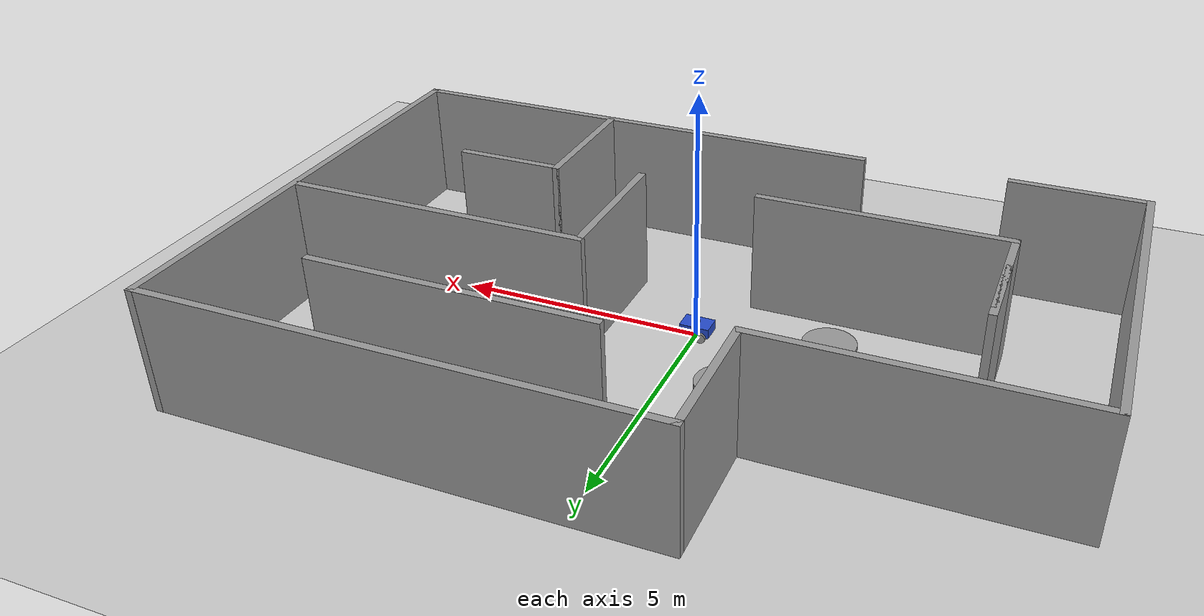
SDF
<sdf version="1.7">
 <world name="default">
  <light name="sun" type="directional">
   <pose>0 0 10 0 -0 0</pose>
   <diffuse>0.8 0.8 0.8 1</diffuse>
   <specular>0.2 0.2 0.2 1</specular>
   <attenuation>
    <range>1000</range>
    <constant>0.9</constant>
    <linear>0.01</linear>
    <quadratic>0.001</quadratic>
   </attenuation>
   <direction>-0.5 0.1 -0.9</direction>
   <spot><inner_angle>0</inner_angle><outer_angle>0</outer_angle><falloff>0</falloff></spot>
  </light>
  <model name="ground_plane">
   <static>1</static>
   <link name="link">
    <collision name="collision">
     <geometry><plane><normal>0 0 1</normal><size>100 100</size></plane></geometry>
     <surface>
      <contact><collide_bitmask>65535</collide_bitmask></contact>
      <friction><ode><mu>100</mu><mu2>50</mu2></ode></friction>
     </surface>
    </collision>
    <visual name="visual">
     <cast_shadows>0</cast_shadows>
     <geometry><plane><normal>0 0 1</normal><size>100 100</size></plane></geometry>
     <material>
      <script><uri>file://media/materials/scripts/gazebo.material</uri><name>Gazebo/Grey</name></script>
     </material>
    </visual>
   </link>
  </model>
  <gravity>0 0 -9.8</gravity>
  <magnetic_field>6e-06 2.3e-05 -4.2e-05</magnetic_field>
  <atmosphere type="adiabatic"/>
  <physics type="ode">
   <max_step_size>0.001</max_step_size>
   <real_time_factor>1</real_time_factor>
   <real_time_update_rate>1000</real_time_update_rate>
  </physics>
  <scene><ambient>0.4 0.4 0.4 1</ambient><background>0.7 0.7 0.7 1</background><shadows>1</shadows></scene>
  <audio><device>default</device></audio>
  <spherical_coordinates>
   <surface_model>EARTH_WGS84</surface_model>
   <latitude_deg>0</latitude_deg>
   <longitude_deg>0</longitude_deg>
   <elevation>0</elevation>
   <heading_deg>0</heading_deg>
  </spherical_coordinates>
  <model name="my_robot">
   <link name="base_link">
    <inertial>
     <pose>0.007034 0 0.000262 1.5708 -0 1.5708</pose>
     <mass>15.76</mass>
     <inertia>
      <ixx>4.53284</ixx>
      <ixy>1.4246e-18</ixy>
      <ixz>-6.39748e-18</ixz>
      <iyy>5.87525</iyy>
      <iyz>0.00502901</iyz>
      <izz>2.26025</izz>
     </inertia>
    </inertial>
    <collision name="base_link_collision">
     <pose>0 0 0.1 0 -0 0</pose>
     <geometry><box><size>0.6 0.4 0.2</size></box></geometry>
    </collision>
    <collision name="base_link_fixed_joint_lump__caster_wheel_link_collision_1">
     <pose>0.2 0 -0.05 0 -0 0</pose>
     <geometry><sphere><radius>0.05</radius></sphere></geometry>
     <surface><friction><ode><mu>0.1</mu><mu2>0.1</mu2></ode></friction></surface>
    </collision>
    <collision name="base_link_fixed_joint_lump__camera_link_collision_2">
     <pose>0.31 0 0 0 -0 0</pose>
     <geometry><box><size>0.02 0.02 0.02</size></box></geometry>
    </collision>
    <collision name="base_link_fixed_joint_lump__imu_link_collision_3">
     <pose>0 0 0.01 0 -0 0</pose>
     <geometry><box><size>0.1 0.1 0.1</size></box></geometry>
    </collision>
    <collision name="base_link_fixed_joint_lump__lidar_link_collision_4">
     <pose>0 0 0.225 0 -0 0</pose>
     <geometry><cylinder><length>0.05</length><radius>0.05</radius></cylinder></geometry>
    </collision>
    <visual name="base_link_visual">
     <pose>0 0 0.1 0 -0 0</pose>
     <geometry><box><size>0.6 0.4 0.2</size></box></geometry>
     <material>
      <script><name>Gazebo/Blue</name><uri>file://media/materials/scripts/gazebo.material</uri></script>
     </material>
    </visual>
    <visual name="base_link_fixed_joint_lump__caster_wheel_link_visual_1">
     <pose>0.2 0 -0.05 0 -0 0</pose>
     <geometry><sphere><radius>0.05</radius></sphere></geometry>
     <material>
      <script><name>Gazebo/Grey</name><uri>file://media/materials/scripts/gazebo.material</uri></script>
     </material>
    </visual>
    <visual name="base_link_fixed_joint_lump__camera_link_visual_2">
     <pose>0.31 0 0 0 -0 0</pose>
     <geometry><box><size>0.02 0.02 0.02</size></box></geometry>
    </visual>
    <visual name="base_link_fixed_joint_lump__imu_link_visual_3">
     <pose>0 0 0.01 0 -0 0</pose>
     <geometry><box><size>0.1 0.1 0.1</size></box></geometry>
    </visual>
    <visual name="base_link_fixed_joint_lump__lidar_link_visual_4">
     <pose>0 0 0.225 0 -0 0</pose>
     <geometry><cylinder><length>0.05</length><radius>0.05</radius></cylinder></geometry>
    </visual>
    <sensor name="depth_camera" type="depth">
     <visualize>1</visualize>
     <update_rate>30</update_rate>
     <camera name="camera">
      <horizontal_fov>1.0472</horizontal_fov>
      <image><width>640</width><height>480</height><format>R8G8B8</format></image>
      <clip><near>0.05</near><far>3</far></clip>
     </camera>
     <plugin name="depth_camera_controller" filename="libgazebo_ros_camera.so">
      <baseline>0.2</baseline>
      <alwaysOn>1</alwaysOn>
      <updateRate>0.0</updateRate>
      <frame_name>camera_depth_frame</frame_name>
     </plugin>
     <pose>0.31 0 0 -1.5708 -0 -1.5708</pose>
    </sensor>
    <sensor name="imu_sensor" type="imu">
     <plugin name="imu_plugin" filename="libgazebo_ros_imu_sensor.so">
      <ros><remapping>~/out:=imu</remapping></ros>
     </plugin>
     <always_on>1</always_on>
     <update_rate>100</update_rate>
     <visualize>1</visualize>
     <imu>
      <angular_velocity>
       <x>
        <noise type="gaussian">
         <mean>0</mean>
         <stddev>0.0002</stddev>
         <bias_mean>7.5e-06</bias_mean>
         <bias_stddev>8e-07</bias_stddev>
        </noise>
       </x>
       <y>
        <noise type="gaussian">
         <mean>0</mean>
         <stddev>0.0002</stddev>
         <bias_mean>7.5e-06</bias_mean>
         <bias_stddev>8e-07</bias_stddev>
        </noise>
       </y>
       <z>
        <noise type="gaussian">
         <mean>0</mean>
         <stddev>0.0002</stddev>
         <bias_mean>7.5e-06</bias_mean>
         <bias_stddev>8e-07</bias_stddev>
        </noise>
       </z>
      </angular_velocity>
      <linear_acceleration>
       <x>
        <noise type="gaussian">
         <mean>0</mean>
         <stddev>0.017</stddev>
         <bias_mean>0.1</bias_mean>
         <bias_stddev>0.001</bias_stddev>
        </noise>
       </x>
       <y>
        <noise type="gaussian">
         <mean>0</mean>
         <stddev>0.017</stddev>
         <bias_mean>0.1</bias_mean>
         <bias_stddev>0.001</bias_stddev>
        </noise>
       </y>
       <z>
        <noise type="gaussian">
         <mean>0</mean>
         <stddev>0.017</stddev>
         <bias_mean>0.1</bias_mean>
         <bias_stddev>0.001</bias_stddev>
        </noise>
       </z>
      </linear_acceleration>
     </imu>
     <pose>0 0 0.01 0 -0 0</pose>
    </sensor>
    <sensor name="lidar" type="ray">
     <always_on>1</always_on>
     <visualize>1</visualize>
     <update_rate>5</update_rate>
     <ray>
      <scan>
       <horizontal>
        <samples>360</samples>
        <resolution>1</resolution>
        <min_angle>0</min_angle>
        <max_angle>6.28</max_angle>
       </horizontal>
       <vertical><samples>1</samples><min_angle>0</min_angle><max_angle>0</max_angle></vertical>
      </scan>
      <range><min>0.12</min><max>3.5</max><resolution>0.015</resolution></range>
      <noise><type>gaussian</type><mean>0</mean><stddev>0.01</stddev></noise>
     </ray>
     <plugin name="lidar_controller" filename="libgazebo_ros_ray_sensor.so">
      <ros><remapping>~/out:=scan</remapping></ros>
      <output_type>sensor_msgs/LaserScan</output_type>
      <frame_name>lidar_link</frame_name>
     </plugin>
     <pose>0 0 0.225 0 -0 0</pose>
    </sensor>
   </link>
   <joint name="base_left_wheel_joint" type="revolute">
    <pose relative_to="base_link">-0.15 0.225 0 0 -0 0</pose>
    <parent>base_link</parent>
    <child>left_wheel_link</child>
    <axis>
     <xyz>0 1 0</xyz>
     <limit><lower>-1e+16</lower><upper>1e+16</upper></limit>
     <dynamics><spring_reference>0</spring_reference><spring_stiffness>0</spring_stiffness></dynamics>
    </axis>
   </joint>
   <link name="left_wheel_link">
    <pose relative_to="base_left_wheel_joint">0 0 0 0 -0 0</pose>
    <inertial>
     <pose>0 0 0 1.5708 -0 0</pose>
     <mass>0.5</mass>
     <inertia>
      <ixx>0.00135417</ixx>
      <ixy>0</ixy>
      <ixz>0</ixz>
      <iyy>0.00135417</iyy>
      <iyz>0</iyz>
      <izz>0.0025</izz>
     </inertia>
    </inertial>
    <collision name="left_wheel_link_collision">
     <pose>0 0 0 1.5708 -0 0</pose>
     <geometry><cylinder><length>0.05</length><radius>0.1</radius></cylinder></geometry>
    </collision>
    <visual name="left_wheel_link_visual">
     <pose>0 0 0 1.5708 -0 0</pose>
     <geometry><cylinder><length>0.05</length><radius>0.1</radius></cylinder></geometry>
     <material>
      <script><name>Gazebo/Grey</name><uri>file://media/materials/scripts/gazebo.material</uri></script>
     </material>
    </visual>
   </link>
   <joint name="base_right_wheel_joint" type="revolute">
    <pose relative_to="base_link">-0.15 -0.225 0 0 -0 0</pose>
    <parent>base_link</parent>
    <child>right_wheel_link</child>
    <axis>
     <xyz>0 1 0</xyz>
     <limit><lower>-1e+16</lower><upper>1e+16</upper></limit>
     <dynamics><spring_reference>0</spring_reference><spring_stiffness>0</spring_stiffness></dynamics>
    </axis>
   </joint>
   <link name="right_wheel_link">
    <pose relative_to="base_right_wheel_joint">0 0 0 0 -0 0</pose>
    <inertial>
     <pose>0 0 0 1.5708 -0 0</pose>
     <mass>0.5</mass>
     <inertia>
      <ixx>0.00135417</ixx>
      <ixy>0</ixy>
      <ixz>0</ixz>
      <iyy>0.00135417</iyy>
      <iyz>0</iyz>
      <izz>0.0025</izz>
     </inertia>
    </inertial>
    <collision name="right_wheel_link_collision">
     <pose>0 0 0 1.5708 -0 0</pose>
     <geometry><cylinder><length>0.05</length><radius>0.1</radius></cylinder></geometry>
    </collision>
    <visual name="right_wheel_link_visual">
     <pose>0 0 0 1.5708 -0 0</pose>
     <geometry><cylinder><length>0.05</length><radius>0.1</radius></cylinder></geometry>
     <material>
      <script><name>Gazebo/Grey</name><uri>file://media/materials/scripts/gazebo.material</uri></script>
     </material>
    </visual>
   </link>
   <static>0</static>
   <plugin name="diff_drive_controller" filename="libgazebo_ros_diff_drive.so">
    <update_rate>50</update_rate>
    <left_joint>base_left_wheel_joint</left_joint>
    <right_joint>base_right_wheel_joint</right_joint>
    <wheel_separation>0.45</wheel_separation>
    <wheel_diameter>0.2</wheel_diameter>
    <max_wheel_torque>20</max_wheel_torque>
    <max_wheel_acceleration>1.0</max_wheel_acceleration>
    <command_topic>cmd_vel</command_topic>
    <publish_odom>1</publish_odom>
    <publish_odom_tf>1</publish_odom_tf>
    <publish_wheel_tf>1</publish_wheel_tf>
    <odometry_topic>odom</odometry_topic>
    <odometry_frame>odom</odometry_frame>
    <robot_base_frame>base_link</robot_base_frame>
   </plugin>
   <pose>-0.019538 -0.004931 0.1 -2e-06 -0 -0.01088</pose>
  </model>
  <model name="Untitled1">
   <link name="Wall_16">
    <pose>3.36559 -3.36936 0 0 -0 1.5708</pose>
    <visual name="Wall_16_Visual">
     <pose>0 0 1.25 0 -0 0</pose>
     <geometry><box><size>2.75 0.15 2.5</size></box></geometry>
     <material>
      <script><uri>file://media/materials/scripts/gazebo.material</uri><name>Gazebo/Grey</name></script>
      <ambient>1 1 1 1</ambient>
      <shader type="pixel"/>
     </material>
     <meta><layer>0</layer></meta>
    </visual>
    <collision name="Wall_16_Collision">
     <pose>0 0 1.25 0 -0 0</pose>
     <geometry><box><size>2.75 0.15 2.5</size></box></geometry>
     <surface>
      <friction>
       <ode><mu>1</mu><mu2>1</mu2><fdir1>0 0 0</fdir1><slip1>0</slip1><slip2>0</slip2></ode>
       <torsional>
        <coefficient>1</coefficient>
        <patch_radius>0</patch_radius>
        <surface_radius>0</surface_radius>
        <use_patch_radius>1</use_patch_radius>
        <ode><slip>0</slip></ode>
       </torsional>
      </friction>
      <bounce><restitution_coefficient>0</restitution_coefficient><threshold>1e+06</threshold></bounce>
      <contact>
       <collide_without_contact>0</collide_without_contact>
       <collide_without_contact_bitmask>1</collide_without_contact_bitmask>
       <collide_bitmask>1</collide_bitmask>
       <ode>
        <soft_cfm>0</soft_cfm>
        <soft_erp>0.2</soft_erp>
        <kp>1e+13</kp>
        <kd>1</kd>
        <max_vel>0.01</max_vel>
        <min_depth>0</min_depth>
       </ode>
       <bullet>
        <split_impulse>1</split_impulse>
        <split_impulse_penetration_threshold>-0.01</split_impulse_penetration_threshold>
        <soft_cfm>0</soft_cfm>
        <soft_erp>0.2</soft_erp>
        <kp>1e+13</kp>
        <kd>1</kd>
       </bullet>
      </contact>
     </surface>
    </collision>
   </link>
   <link name="Wall_17">
    <pose>4.41559 -2.06936 0 0 -0 0</pose>
    <visual name="Wall_17_Visual">
     <pose>0 0 1.25 0 -0 0</pose>
     <geometry><box><size>2.25 0.15 2.5</size></box></geometry>
     <material>
      <script><uri>file://media/materials/scripts/gazebo.material</uri><name>Gazebo/Grey</name></script>
      <ambient>1 1 1 1</ambient>
      <shader type="pixel"/>
     </material>
     <meta><layer>0</layer></meta>
    </visual>
    <collision name="Wall_17_Collision">
     <pose>0 0 1.25 0 -0 0</pose>
     <geometry><box><size>2.25 0.15 2.5</size></box></geometry>
     <surface>
      <friction>
       <ode><mu>1</mu><mu2>1</mu2><fdir1>0 0 0</fdir1><slip1>0</slip1><slip2>0</slip2></ode>
       <torsional>
        <coefficient>1</coefficient>
        <patch_radius>0</patch_radius>
        <surface_radius>0</surface_radius>
        <use_patch_radius>1</use_patch_radius>
        <ode><slip>0</slip></ode>
       </torsional>
      </friction>
      <bounce><restitution_coefficient>0</restitution_coefficient><threshold>1e+06</threshold></bounce>
      <contact>
       <collide_without_contact>0</collide_without_contact>
       <collide_without_contact_bitmask>1</collide_without_contact_bitmask>
       <collide_bitmask>1</collide_bitmask>
       <ode>
        <soft_cfm>0</soft_cfm>
        <soft_erp>0.2</soft_erp>
        <kp>1e+13</kp>
        <kd>1</kd>
        <max_vel>0.01</max_vel>
        <min_depth>0</min_depth>
       </ode>
       <bullet>
        <split_impulse>1</split_impulse>
        <split_impulse_penetration_threshold>-0.01</split_impulse_penetration_threshold>
        <soft_cfm>0</soft_cfm>
        <soft_erp>0.2</soft_erp>
        <kp>1e+13</kp>
        <kd>1</kd>
       </bullet>
      </contact>
     </surface>
    </collision>
   </link>
   <link name="Wall_19">
    <pose>4.70035 0.479718 0 0 -0 3.14159</pose>
    <visual name="Wall_19_Visual">
     <pose>0 0 1.25 0 -0 0</pose>
     <geometry><box><size>6.25 0.15 2.5</size></box></geometry>
     <material>
      <script><uri>file://media/materials/scripts/gazebo.material</uri><name>Gazebo/Grey</name></script>
      <ambient>1 1 1 1</ambient>
      <shader type="pixel"/>
     </material>
     <meta><layer>0</layer></meta>
    </visual>
    <collision name="Wall_19_Collision">
     <pose>0 0 1.25 0 -0 0</pose>
     <geometry><box><size>6.25 0.15 2.5</size></box></geometry>
     <surface>
      <friction>
       <ode><mu>1</mu><mu2>1</mu2><fdir1>0 0 0</fdir1><slip1>0</slip1><slip2>0</slip2></ode>
       <torsional>
        <coefficient>1</coefficient>
        <patch_radius>0</patch_radius>
        <surface_radius>0</surface_radius>
        <use_patch_radius>1</use_patch_radius>
        <ode><slip>0</slip></ode>
       </torsional>
      </friction>
      <bounce><restitution_coefficient>0</restitution_coefficient><threshold>1e+06</threshold></bounce>
      <contact>
       <collide_without_contact>0</collide_without_contact>
       <collide_without_contact_bitmask>1</collide_without_contact_bitmask>
       <collide_bitmask>1</collide_bitmask>
       <ode>
        <soft_cfm>0</soft_cfm>
        <soft_erp>0.2</soft_erp>
        <kp>1e+13</kp>
        <kd>1</kd>
        <max_vel>0.01</max_vel>
        <min_depth>0</min_depth>
       </ode>
       <bullet>
        <split_impulse>1</split_impulse>
        <split_impulse_penetration_threshold>-0.01</split_impulse_penetration_threshold>
        <soft_cfm>0</soft_cfm>
        <soft_erp>0.2</soft_erp>
        <kp>1e+13</kp>
        <kd>1</kd>
       </bullet>
      </contact>
     </surface>
    </collision>
   </link>
   <link name="Wall_2">
    <pose>2.8 -4.75 0 0 -0 0</pose>
    <visual name="Wall_2_Visual">
     <pose>0 0 1.25 0 -0 0</pose>
     <geometry><box><size>10.25 0.15 2.5</size></box></geometry>
     <material>
      <script><uri>file://media/materials/scripts/gazebo.material</uri><name>Gazebo/Grey</name></script>
      <ambient>1 1 1 1</ambient>
      <shader type="pixel"/>
     </material>
     <meta><layer>0</layer></meta>
    </visual>
    <collision name="Wall_2_Collision">
     <pose>0 0 1.25 0 -0 0</pose>
     <geometry><box><size>10.25 0.15 2.5</size></box></geometry>
     <surface>
      <friction>
       <ode><mu>1</mu><mu2>1</mu2><fdir1>0 0 0</fdir1><slip1>0</slip1><slip2>0</slip2></ode>
       <torsional>
        <coefficient>1</coefficient>
        <patch_radius>0</patch_radius>
        <surface_radius>0</surface_radius>
        <use_patch_radius>1</use_patch_radius>
        <ode><slip>0</slip></ode>
       </torsional>
      </friction>
      <bounce><restitution_coefficient>0</restitution_coefficient><threshold>1e+06</threshold></bounce>
      <contact>
       <collide_without_contact>0</collide_without_contact>
       <collide_without_contact_bitmask>1</collide_without_contact_bitmask>
       <collide_bitmask>1</collide_bitmask>
       <ode>
        <soft_cfm>0</soft_cfm>
        <soft_erp>0.2</soft_erp>
        <kp>1e+13</kp>
        <kd>1</kd>
        <max_vel>0.01</max_vel>
        <min_depth>0</min_depth>
       </ode>
       <bullet>
        <split_impulse>1</split_impulse>
        <split_impulse_penetration_threshold>-0.01</split_impulse_penetration_threshold>
        <soft_cfm>0</soft_cfm>
        <soft_erp>0.2</soft_erp>
        <kp>1e+13</kp>
        <kd>1</kd>
       </bullet>
      </contact>
     </surface>
    </collision>
   </link>
   <link name="Wall_20">
    <pose>1.65035 -0.945282 0 0 0 -1.5708</pose>
    <visual name="Wall_20_Visual">
     <pose>0 0 1.25 0 -0 0</pose>
     <geometry><box><size>3 0.15 2.5</size></box></geometry>
     <material>
      <script><uri>file://media/materials/scripts/gazebo.material</uri><name>Gazebo/Grey</name></script>
      <ambient>1 1 1 1</ambient>
      <shader type="pixel"/>
     </material>
     <meta><layer>0</layer></meta>
    </visual>
    <collision name="Wall_20_Collision">
     <pose>0 0 1.25 0 -0 0</pose>
     <geometry><box><size>3 0.15 2.5</size></box></geometry>
     <surface>
      <friction>
       <ode><mu>1</mu><mu2>1</mu2><fdir1>0 0 0</fdir1><slip1>0</slip1><slip2>0</slip2></ode>
       <torsional>
        <coefficient>1</coefficient>
        <patch_radius>0</patch_radius>
        <surface_radius>0</surface_radius>
        <use_patch_radius>1</use_patch_radius>
        <ode><slip>0</slip></ode>
       </torsional>
      </friction>
      <bounce><restitution_coefficient>0</restitution_coefficient><threshold>1e+06</threshold></bounce>
      <contact>
       <collide_without_contact>0</collide_without_contact>
       <collide_without_contact_bitmask>1</collide_without_contact_bitmask>
       <collide_bitmask>1</collide_bitmask>
       <ode>
        <soft_cfm>0</soft_cfm>
        <soft_erp>0.2</soft_erp>
        <kp>1e+13</kp>
        <kd>1</kd>
        <max_vel>0.01</max_vel>
        <min_depth>0</min_depth>
       </ode>
       <bullet>
        <split_impulse>1</split_impulse>
        <split_impulse_penetration_threshold>-0.01</split_impulse_penetration_threshold>
        <soft_cfm>0</soft_cfm>
        <soft_erp>0.2</soft_erp>
        <kp>1e+13</kp>
        <kd>1</kd>
       </bullet>
      </contact>
     </surface>
    </collision>
   </link>
   <link name="Wall_22">
    <pose>-5.68552 -1.17801 0 0 0 -1.5708</pose>
    <visual name="Wall_22_Visual">
     <pose>0 0 1.25 0 -0 0</pose>
     <geometry><box><size>2.5 0.15 2.5</size></box></geometry>
     <material>
      <script><uri>file://media/materials/scripts/gazebo.material</uri><name>Gazebo/Grey</name></script>
      <ambient>1 1 1 1</ambient>
      <shader type="pixel"/>
     </material>
     <meta><layer>0</layer></meta>
    </visual>
    <collision name="Wall_22_Collision">
     <pose>0 0 1.25 0 -0 0</pose>
     <geometry><box><size>2.5 0.15 2.5</size></box></geometry>
     <surface>
      <friction>
       <ode><mu>1</mu><mu2>1</mu2><fdir1>0 0 0</fdir1><slip1>0</slip1><slip2>0</slip2></ode>
       <torsional>
        <coefficient>1</coefficient>
        <patch_radius>0</patch_radius>
        <surface_radius>0</surface_radius>
        <use_patch_radius>1</use_patch_radius>
        <ode><slip>0</slip></ode>
       </torsional>
      </friction>
      <bounce><restitution_coefficient>0</restitution_coefficient><threshold>1e+06</threshold></bounce>
      <contact>
       <collide_without_contact>0</collide_without_contact>
       <collide_without_contact_bitmask>1</collide_without_contact_bitmask>
       <collide_bitmask>1</collide_bitmask>
       <ode>
        <soft_cfm>0</soft_cfm>
        <soft_erp>0.2</soft_erp>
        <kp>1e+13</kp>
        <kd>1</kd>
        <max_vel>0.01</max_vel>
        <min_depth>0</min_depth>
       </ode>
       <bullet>
        <split_impulse>1</split_impulse>
        <split_impulse_penetration_threshold>-0.01</split_impulse_penetration_threshold>
        <soft_cfm>0</soft_cfm>
        <soft_erp>0.2</soft_erp>
        <kp>1e+13</kp>
        <kd>1</kd>
       </bullet>
      </contact>
     </surface>
    </collision>
   </link>
   <link name="Wall_23">
    <pose>-3.26052 -2.35301 0 0 -0 0</pose>
    <visual name="Wall_23_Visual">
     <pose>0 0 1.25 0 -0 0</pose>
     <geometry><box><size>5 0.15 2.5</size></box></geometry>
     <material>
      <script><uri>file://media/materials/scripts/gazebo.material</uri><name>Gazebo/Grey</name></script>
      <ambient>1 1 1 1</ambient>
      <shader type="pixel"/>
     </material>
     <meta><layer>0</layer></meta>
    </visual>
    <collision name="Wall_23_Collision">
     <pose>0 0 1.25 0 -0 0</pose>
     <geometry><box><size>5 0.15 2.5</size></box></geometry>
     <surface>
      <friction>
       <ode><mu>1</mu><mu2>1</mu2><fdir1>0 0 0</fdir1><slip1>0</slip1><slip2>0</slip2></ode>
       <torsional>
        <coefficient>1</coefficient>
        <patch_radius>0</patch_radius>
        <surface_radius>0</surface_radius>
        <use_patch_radius>1</use_patch_radius>
        <ode><slip>0</slip></ode>
       </torsional>
      </friction>
      <bounce><restitution_coefficient>0</restitution_coefficient><threshold>1e+06</threshold></bounce>
      <contact>
       <collide_without_contact>0</collide_without_contact>
       <collide_without_contact_bitmask>1</collide_without_contact_bitmask>
       <collide_bitmask>1</collide_bitmask>
       <ode>
        <soft_cfm>0</soft_cfm>
        <soft_erp>0.2</soft_erp>
        <kp>1e+13</kp>
        <kd>1</kd>
        <max_vel>0.01</max_vel>
        <min_depth>0</min_depth>
       </ode>
       <bullet>
        <split_impulse>1</split_impulse>
        <split_impulse_penetration_threshold>-0.01</split_impulse_penetration_threshold>
        <soft_cfm>0</soft_cfm>
        <soft_erp>0.2</soft_erp>
        <kp>1e+13</kp>
        <kd>1</kd>
       </bullet>
      </contact>
     </surface>
    </collision>
   </link>
   <link name="Wall_26">
    <pose>-5.68552 -0.553008 0 0 0 -1.5708</pose>
    <visual name="Wall_26_Visual">
     <pose>0 0 1.25 0 -0 0</pose>
     <geometry><box><size>1.75 0.15 2.5</size></box></geometry>
     <material>
      <script><uri>file://media/materials/scripts/gazebo.material</uri><name>Gazebo/Grey</name></script>
      <ambient>1 1 1 1</ambient>
      <shader type="pixel"/>
     </material>
     <meta><layer>0</layer></meta>
    </visual>
    <collision name="Wall_26_Collision">
     <pose>0 0 1.25 0 -0 0</pose>
     <geometry><box><size>1.75 0.15 2.5</size></box></geometry>
     <surface>
      <friction>
       <ode><mu>1</mu><mu2>1</mu2><fdir1>0 0 0</fdir1><slip1>0</slip1><slip2>0</slip2></ode>
       <torsional>
        <coefficient>1</coefficient>
        <patch_radius>0</patch_radius>
        <surface_radius>0</surface_radius>
        <use_patch_radius>1</use_patch_radius>
        <ode><slip>0</slip></ode>
       </torsional>
      </friction>
      <bounce><restitution_coefficient>0</restitution_coefficient><threshold>1e+06</threshold></bounce>
      <contact>
       <collide_without_contact>0</collide_without_contact>
       <collide_without_contact_bitmask>1</collide_without_contact_bitmask>
       <collide_bitmask>1</collide_bitmask>
       <ode>
        <soft_cfm>0</soft_cfm>
        <soft_erp>0.2</soft_erp>
        <kp>1e+13</kp>
        <kd>1</kd>
        <max_vel>0.01</max_vel>
        <min_depth>0</min_depth>
       </ode>
       <bullet>
        <split_impulse>1</split_impulse>
        <split_impulse_penetration_threshold>-0.01</split_impulse_penetration_threshold>
        <soft_cfm>0</soft_cfm>
        <soft_erp>0.2</soft_erp>
        <kp>1e+13</kp>
        <kd>1</kd>
       </bullet>
      </contact>
     </surface>
    </collision>
   </link>
   <link name="Wall_28">
    <pose>2.96577 2.85919 0 0 -0 0</pose>
    <visual name="Wall_28_Visual">
     <pose>0 0 1.25 0 -0 0</pose>
     <geometry><box><size>5.75 0.15 2.5</size></box></geometry>
     <material>
      <script><uri>file://media/materials/scripts/gazebo.material</uri><name>Gazebo/Grey</name></script>
      <ambient>1 1 1 1</ambient>
      <shader type="pixel"/>
     </material>
     <meta><layer>0</layer></meta>
    </visual>
    <collision name="Wall_28_Collision">
     <pose>0 0 1.25 0 -0 0</pose>
     <geometry><box><size>5.75 0.15 2.5</size></box></geometry>
     <surface>
      <friction>
       <ode><mu>1</mu><mu2>1</mu2><fdir1>0 0 0</fdir1><slip1>0</slip1><slip2>0</slip2></ode>
       <torsional>
        <coefficient>1</coefficient>
        <patch_radius>0</patch_radius>
        <surface_radius>0</surface_radius>
        <use_patch_radius>1</use_patch_radius>
        <ode><slip>0</slip></ode>
       </torsional>
      </friction>
      <bounce><restitution_coefficient>0</restitution_coefficient><threshold>1e+06</threshold></bounce>
      <contact>
       <collide_without_contact>0</collide_without_contact>
       <collide_without_contact_bitmask>1</collide_without_contact_bitmask>
       <collide_bitmask>1</collide_bitmask>
       <ode>
        <soft_cfm>0</soft_cfm>
        <soft_erp>0.2</soft_erp>
        <kp>1e+13</kp>
        <kd>1</kd>
        <max_vel>0.01</max_vel>
        <min_depth>0</min_depth>
       </ode>
       <bullet>
        <split_impulse>1</split_impulse>
        <split_impulse_penetration_threshold>-0.01</split_impulse_penetration_threshold>
        <soft_cfm>0</soft_cfm>
        <soft_erp>0.2</soft_erp>
        <kp>1e+13</kp>
        <kd>1</kd>
       </bullet>
      </contact>
     </surface>
    </collision>
   </link>
   <link name="Wall_3">
    <pose>7.85 0.05 0 0 -0 1.5708</pose>
    <visual name="Wall_3_Visual">
     <pose>0 0 1.25 0 -0 0</pose>
     <geometry><box><size>9.75 0.15 2.5</size></box></geometry>
     <material>
      <script><uri>file://media/materials/scripts/gazebo.material</uri><name>Gazebo/Grey</name></script>
      <ambient>1 1 1 1</ambient>
      <shader type="pixel"/>
     </material>
     <meta><layer>0</layer></meta>
    </visual>
    <collision name="Wall_3_Collision">
     <pose>0 0 1.25 0 -0 0</pose>
     <geometry><box><size>9.75 0.15 2.5</size></box></geometry>
     <surface>
      <friction>
       <ode><mu>1</mu><mu2>1</mu2><fdir1>0 0 0</fdir1><slip1>0</slip1><slip2>0</slip2></ode>
       <torsional>
        <coefficient>1</coefficient>
        <patch_radius>0</patch_radius>
        <surface_radius>0</surface_radius>
        <use_patch_radius>1</use_patch_radius>
        <ode><slip>0</slip></ode>
       </torsional>
      </friction>
      <bounce><restitution_coefficient>0</restitution_coefficient><threshold>1e+06</threshold></bounce>
      <contact>
       <collide_without_contact>0</collide_without_contact>
       <collide_without_contact_bitmask>1</collide_without_contact_bitmask>
       <collide_bitmask>1</collide_bitmask>
       <ode>
        <soft_cfm>0</soft_cfm>
        <soft_erp>0.2</soft_erp>
        <kp>1e+13</kp>
        <kd>1</kd>
        <max_vel>0.01</max_vel>
        <min_depth>0</min_depth>
       </ode>
       <bullet>
        <split_impulse>1</split_impulse>
        <split_impulse_penetration_threshold>-0.01</split_impulse_penetration_threshold>
        <soft_cfm>0</soft_cfm>
        <soft_erp>0.2</soft_erp>
        <kp>1e+13</kp>
        <kd>1</kd>
       </bullet>
      </contact>
     </surface>
    </collision>
   </link>
   <link name="Wall_4">
    <pose>2.925 4.85 0 0 -0 3.14159</pose>
    <visual name="Wall_4_Visual">
     <pose>0 0 1.25 0 -0 0</pose>
     <geometry><box><size>10 0.15 2.5</size></box></geometry>
     <material>
      <script><uri>file://media/materials/scripts/gazebo.material</uri><name>Gazebo/Grey</name></script>
      <ambient>1 1 1 1</ambient>
      <shader type="pixel"/>
     </material>
     <meta><layer>0</layer></meta>
    </visual>
    <collision name="Wall_4_Collision">
     <pose>0 0 1.25 0 -0 0</pose>
     <geometry><box><size>10 0.15 2.5</size></box></geometry>
     <surface>
      <friction>
       <ode><mu>1</mu><mu2>1</mu2><fdir1>0 0 0</fdir1><slip1>0</slip1><slip2>0</slip2></ode>
       <torsional>
        <coefficient>1</coefficient>
        <patch_radius>0</patch_radius>
        <surface_radius>0</surface_radius>
        <use_patch_radius>1</use_patch_radius>
        <ode><slip>0</slip></ode>
       </torsional>
      </friction>
      <bounce><restitution_coefficient>0</restitution_coefficient><threshold>1e+06</threshold></bounce>
      <contact>
       <collide_without_contact>0</collide_without_contact>
       <collide_without_contact_bitmask>1</collide_without_contact_bitmask>
       <collide_bitmask>1</collide_bitmask>
       <ode>
        <soft_cfm>0</soft_cfm>
        <soft_erp>0.2</soft_erp>
        <kp>1e+13</kp>
        <kd>1</kd>
        <max_vel>0.01</max_vel>
        <min_depth>0</min_depth>
       </ode>
       <bullet>
        <split_impulse>1</split_impulse>
        <split_impulse_penetration_threshold>-0.01</split_impulse_penetration_threshold>
        <soft_cfm>0</soft_cfm>
        <soft_erp>0.2</soft_erp>
        <kp>1e+13</kp>
        <kd>1</kd>
       </bullet>
      </contact>
     </surface>
    </collision>
   </link>
   <link name="Wall_5">
    <pose>-2 3.55 0 0 0 -1.5708</pose>
    <visual name="Wall_5_Visual">
     <pose>0 0 1.25 0 -0 0</pose>
     <geometry><box><size>2.75 0.15 2.5</size></box></geometry>
     <material>
      <script><uri>file://media/materials/scripts/gazebo.material</uri><name>Gazebo/Grey</name></script>
      <ambient>1 1 1 1</ambient>
      <shader type="pixel"/>
     </material>
     <meta><layer>0</layer></meta>
    </visual>
    <collision name="Wall_5_Collision">
     <pose>0 0 1.25 0 -0 0</pose>
     <geometry><box><size>2.75 0.15 2.5</size></box></geometry>
     <surface>
      <friction>
       <ode><mu>1</mu><mu2>1</mu2><fdir1>0 0 0</fdir1><slip1>0</slip1><slip2>0</slip2></ode>
       <torsional>
        <coefficient>1</coefficient>
        <patch_radius>0</patch_radius>
        <surface_radius>0</surface_radius>
        <use_patch_radius>1</use_patch_radius>
        <ode><slip>0</slip></ode>
       </torsional>
      </friction>
      <bounce><restitution_coefficient>0</restitution_coefficient><threshold>1e+06</threshold></bounce>
      <contact>
       <collide_without_contact>0</collide_without_contact>
       <collide_without_contact_bitmask>1</collide_without_contact_bitmask>
       <collide_bitmask>1</collide_bitmask>
       <ode>
        <soft_cfm>0</soft_cfm>
        <soft_erp>0.2</soft_erp>
        <kp>1e+13</kp>
        <kd>1</kd>
        <max_vel>0.01</max_vel>
        <min_depth>0</min_depth>
       </ode>
       <bullet>
        <split_impulse>1</split_impulse>
        <split_impulse_penetration_threshold>-0.01</split_impulse_penetration_threshold>
        <soft_cfm>0</soft_cfm>
        <soft_erp>0.2</soft_erp>
        <kp>1e+13</kp>
        <kd>1</kd>
       </bullet>
      </contact>
     </surface>
    </collision>
   </link>
   <link name="Wall_6">
    <pose>-4.925 2.25 0 0 -0 3.14159</pose>
    <visual name="Wall_6_Visual">
     <pose>0 0 1.25 0 -0 0</pose>
     <geometry><box><size>6 0.15 2.5</size></box></geometry>
     <material>
      <script><uri>file://media/materials/scripts/gazebo.material</uri><name>Gazebo/Grey</name></script>
      <ambient>1 1 1 1</ambient>
      <shader type="pixel"/>
     </material>
     <meta><layer>0</layer></meta>
    </visual>
    <collision name="Wall_6_Collision">
     <pose>0 0 1.25 0 -0 0</pose>
     <geometry><box><size>6 0.15 2.5</size></box></geometry>
     <surface>
      <friction>
       <ode><mu>1</mu><mu2>1</mu2><fdir1>0 0 0</fdir1><slip1>0</slip1><slip2>0</slip2></ode>
       <torsional>
        <coefficient>1</coefficient>
        <patch_radius>0</patch_radius>
        <surface_radius>0</surface_radius>
        <use_patch_radius>1</use_patch_radius>
        <ode><slip>0</slip></ode>
       </torsional>
      </friction>
      <bounce><restitution_coefficient>0</restitution_coefficient><threshold>1e+06</threshold></bounce>
      <contact>
       <collide_without_contact>0</collide_without_contact>
       <collide_without_contact_bitmask>1</collide_without_contact_bitmask>
       <collide_bitmask>1</collide_bitmask>
       <ode>
        <soft_cfm>0</soft_cfm>
        <soft_erp>0.2</soft_erp>
        <kp>1e+13</kp>
        <kd>1</kd>
        <max_vel>0.01</max_vel>
        <min_depth>0</min_depth>
       </ode>
       <bullet>
        <split_impulse>1</split_impulse>
        <split_impulse_penetration_threshold>-0.01</split_impulse_penetration_threshold>
        <soft_cfm>0</soft_cfm>
        <soft_erp>0.2</soft_erp>
        <kp>1e+13</kp>
        <kd>1</kd>
       </bullet>
      </contact>
     </surface>
    </collision>
   </link>
   <link name="Wall_7">
    <pose>-7.85 -1.3 0 0 0 -1.5708</pose>
    <visual name="Wall_7_Visual">
     <pose>0 0 1.25 0 -0 0</pose>
     <geometry><box><size>7.25 0.15 2.5</size></box></geometry>
     <material>
      <script><uri>file://media/materials/scripts/gazebo.material</uri><name>Gazebo/Grey</name></script>
      <ambient>1 1 1 1</ambient>
      <shader type="pixel"/>
     </material>
     <meta><layer>0</layer></meta>
    </visual>
    <collision name="Wall_7_Collision">
     <pose>0 0 1.25 0 -0 0</pose>
     <geometry><box><size>7.25 0.15 2.5</size></box></geometry>
     <surface>
      <friction>
       <ode><mu>1</mu><mu2>1</mu2><fdir1>0 0 0</fdir1><slip1>0</slip1><slip2>0</slip2></ode>
       <torsional>
        <coefficient>1</coefficient>
        <patch_radius>0</patch_radius>
        <surface_radius>0</surface_radius>
        <use_patch_radius>1</use_patch_radius>
        <ode><slip>0</slip></ode>
       </torsional>
      </friction>
      <bounce><restitution_coefficient>0</restitution_coefficient><threshold>1e+06</threshold></bounce>
      <contact>
       <collide_without_contact>0</collide_without_contact>
       <collide_without_contact_bitmask>1</collide_without_contact_bitmask>
       <collide_bitmask>1</collide_bitmask>
       <ode>
        <soft_cfm>0</soft_cfm>
        <soft_erp>0.2</soft_erp>
        <kp>1e+13</kp>
        <kd>1</kd>
        <max_vel>0.01</max_vel>
        <min_depth>0</min_depth>
       </ode>
       <bullet>
        <split_impulse>1</split_impulse>
        <split_impulse_penetration_threshold>-0.01</split_impulse_penetration_threshold>
        <soft_cfm>0</soft_cfm>
        <soft_erp>0.2</soft_erp>
        <kp>1e+13</kp>
        <kd>1</kd>
       </bullet>
      </contact>
     </surface>
    </collision>
   </link>
   <link name="Wall_8">
    <pose>-6.55 -4.85 0 0 -0 0</pose>
    <visual name="Wall_8_Visual">
     <pose>0 0 1.25 0 -0 0</pose>
     <geometry><box><size>2.75 0.15 2.5</size></box></geometry>
     <material>
      <script><uri>file://media/materials/scripts/gazebo.material</uri><name>Gazebo/Grey</name></script>
      <ambient>1 1 1 1</ambient>
      <shader type="pixel"/>
     </material>
     <meta><layer>0</layer></meta>
    </visual>
    <collision name="Wall_8_Collision">
     <pose>0 0 1.25 0 -0 0</pose>
     <geometry><box><size>2.75 0.15 2.5</size></box></geometry>
     <surface>
      <friction>
       <ode><mu>1</mu><mu2>1</mu2><fdir1>0 0 0</fdir1><slip1>0</slip1><slip2>0</slip2></ode>
       <torsional>
        <coefficient>1</coefficient>
        <patch_radius>0</patch_radius>
        <surface_radius>0</surface_radius>
        <use_patch_radius>1</use_patch_radius>
        <ode><slip>0</slip></ode>
       </torsional>
      </friction>
      <bounce><restitution_coefficient>0</restitution_coefficient><threshold>1e+06</threshold></bounce>
      <contact>
       <collide_without_contact>0</collide_without_contact>
       <collide_without_contact_bitmask>1</collide_without_contact_bitmask>
       <collide_bitmask>1</collide_bitmask>
       <ode>
        <soft_cfm>0</soft_cfm>
        <soft_erp>0.2</soft_erp>
        <kp>1e+13</kp>
        <kd>1</kd>
        <max_vel>0.01</max_vel>
        <min_depth>0</min_depth>
       </ode>
       <bullet>
        <split_impulse>1</split_impulse>
        <split_impulse_penetration_threshold>-0.01</split_impulse_penetration_threshold>
        <soft_cfm>0</soft_cfm>
        <soft_erp>0.2</soft_erp>
        <kp>1e+13</kp>
        <kd>1</kd>
       </bullet>
      </contact>
     </surface>
    </collision>
   </link>
   <link name="link_2">
    <inertial>
     <mass>1</mass>
     <inertia><ixx>0.145833</ixx><ixy>0</ixy><ixz>0</ixz><iyy>0.145833</iyy><iyz>0</iyz><izz>0.125</izz></inertia>
    </inertial>
    <pose>-2.93921 -0.127246 0.5 0 -0 0</pose>
    <visual name="visual">
     <geometry><cylinder><radius>0.5</radius><length>1</length></cylinder></geometry>
     <material>
      <lighting>1</lighting>
      <script><uri>file://media/materials/scripts/gazebo.material</uri><name>Gazebo/Grey</name></script>
      <shader type="pixel"/>
     </material>
    </visual>
    <collision name="collision">
     <geometry><cylinder><radius>0.5</radius><length>1</length></cylinder></geometry>
     <surface>
      <friction>
       <ode><mu>1</mu><mu2>1</mu2><fdir1>0 0 0</fdir1><slip1>0</slip1><slip2>0</slip2></ode>
       <torsional>
        <coefficient>1</coefficient>
        <patch_radius>0</patch_radius>
        <surface_radius>0</surface_radius>
        <use_patch_radius>1</use_patch_radius>
        <ode><slip>0</slip></ode>
       </torsional>
      </friction>
      <bounce><restitution_coefficient>0</restitution_coefficient><threshold>1e+06</threshold></bounce>
      <contact>
       <collide_without_contact>0</collide_without_contact>
       <collide_without_contact_bitmask>1</collide_without_contact_bitmask>
       <collide_bitmask>1</collide_bitmask>
       <ode>
        <soft_cfm>0</soft_cfm>
        <soft_erp>0.2</soft_erp>
        <kp>1e+13</kp>
        <kd>1</kd>
        <max_vel>0.01</max_vel>
        <min_depth>0</min_depth>
       </ode>
       <bullet>
        <split_impulse>1</split_impulse>
        <split_impulse_penetration_threshold>-0.01</split_impulse_penetration_threshold>
        <soft_cfm>0</soft_cfm>
        <soft_erp>0.2</soft_erp>
        <kp>1e+13</kp>
        <kd>1</kd>
       </bullet>
      </contact>
     </surface>
    </collision>
   </link>
   <link name="link_3">
    <inertial>
     <mass>1</mass>
     <inertia><ixx>0.145833</ixx><ixy>0</ixy><ixz>0</ixz><iyy>0.145833</iyy><iyz>0</iyz><izz>0.125</izz></inertia>
    </inertial>
    <pose>-1.56367 1.68707 0.5 0 -0 0</pose>
    <visual name="visual">
     <geometry><cylinder><radius>0.5</radius><length>1</length></cylinder></geometry>
     <material>
      <lighting>1</lighting>
      <script><uri>file://media/materials/scripts/gazebo.material</uri><name>Gazebo/Grey</name></script>
      <shader type="pixel"/>
     </material>
    </visual>
    <collision name="collision">
     <geometry><cylinder><radius>0.5</radius><length>1</length></cylinder></geometry>
     <surface>
      <friction>
       <ode><mu>1</mu><mu2>1</mu2><fdir1>0 0 0</fdir1><slip1>0</slip1><slip2>0</slip2></ode>
       <torsional>
        <coefficient>1</coefficient>
        <patch_radius>0</patch_radius>
        <surface_radius>0</surface_radius>
        <use_patch_radius>1</use_patch_radius>
        <ode><slip>0</slip></ode>
       </torsional>
      </friction>
      <bounce><restitution_coefficient>0</restitution_coefficient><threshold>1e+06</threshold></bounce>
      <contact>
       <collide_without_contact>0</collide_without_contact>
       <collide_without_contact_bitmask>1</collide_without_contact_bitmask>
       <collide_bitmask>1</collide_bitmask>
       <ode>
        <soft_cfm>0</soft_cfm>
        <soft_erp>0.2</soft_erp>
        <kp>1e+13</kp>
        <kd>1</kd>
        <max_vel>0.01</max_vel>
        <min_depth>0</min_depth>
       </ode>
       <bullet>
        <split_impulse>1</split_impulse>
        <split_impulse_penetration_threshold>-0.01</split_impulse_penetration_threshold>
        <soft_cfm>0</soft_cfm>
        <soft_erp>0.2</soft_erp>
        <kp>1e+13</kp>
        <kd>1</kd>
       </bullet>
      </contact>
     </surface>
    </collision>
   </link>
   <static>1</static>
   <pose>0.109046 0.916166 0 0 -0 0</pose>
  </model>
 </world>
</sdf>
